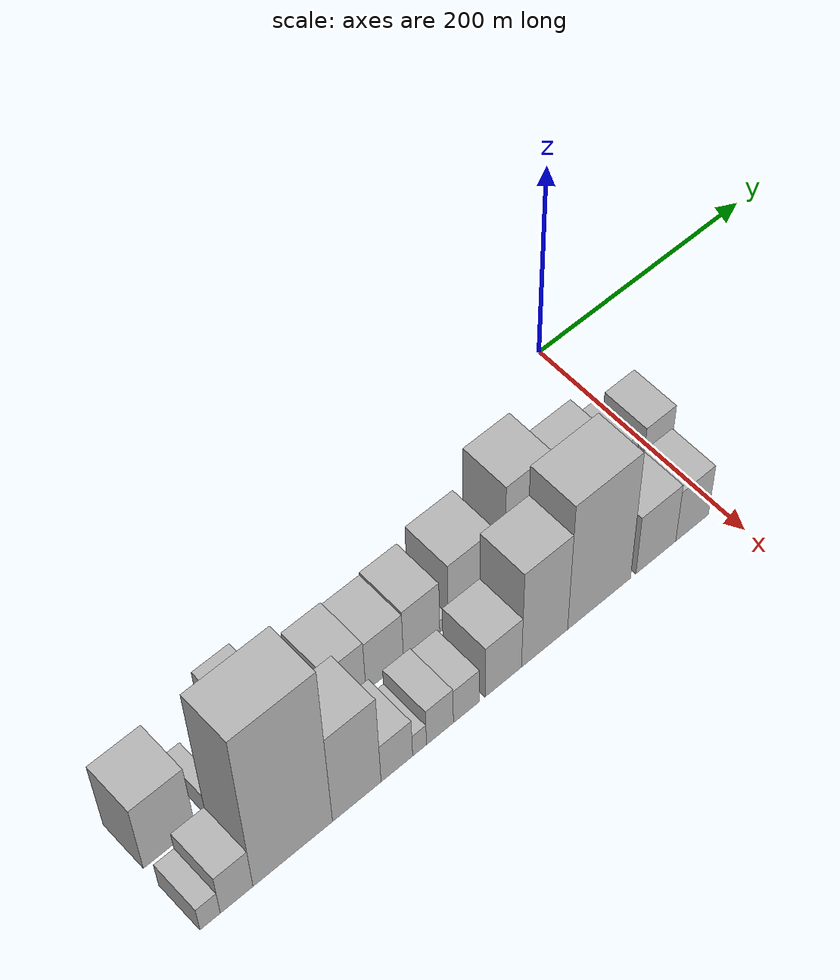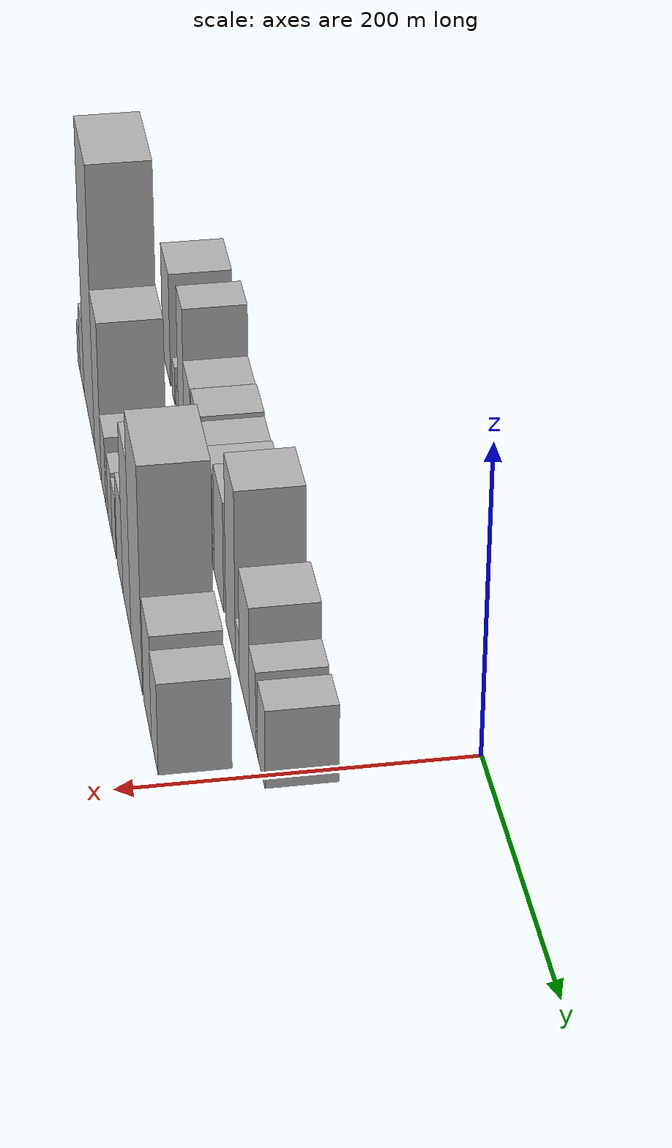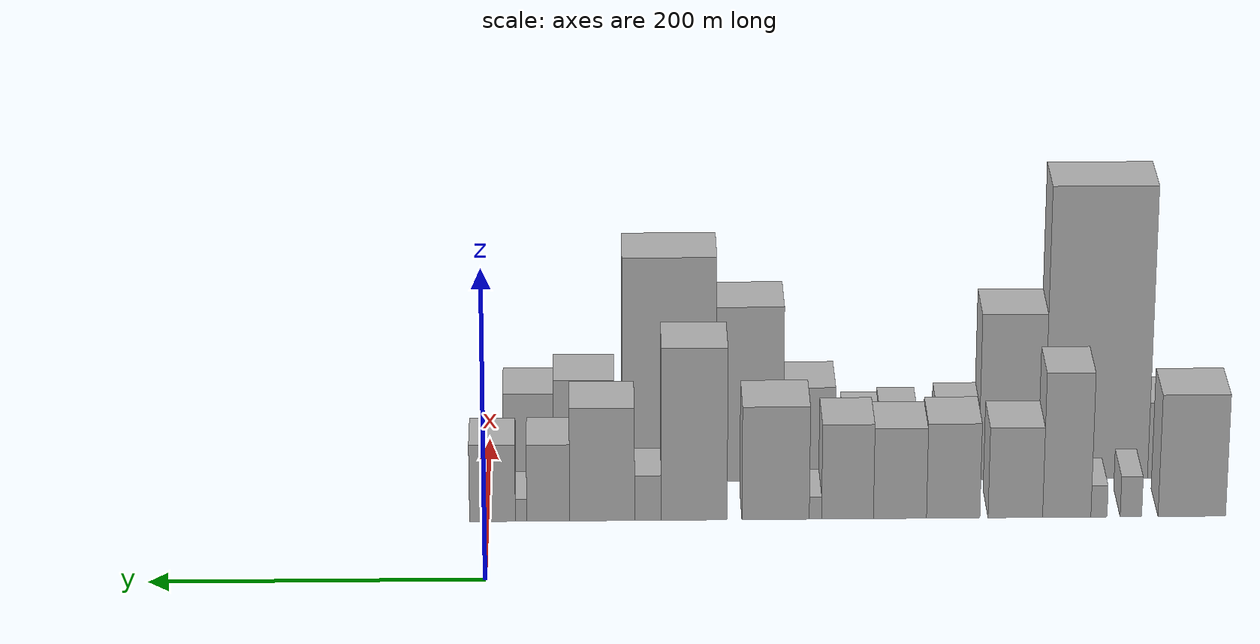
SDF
<sdf version="1.6">
 <world name="default">
  <model name="building_1">
   <static>1</static>
   <pose>100.0000 -429.3732 0 0.000000 0.000000 0.000000</pose>
   <link name="link">
    <pose>0 0 40.50 0 0 0</pose>
    <collision name="collision"><geometry><box><size>40.0000 41.2535 81.0000</size></box></geometry></collision>
    <visual name="visual">
     <cast_shadows>0</cast_shadows>
     <geometry><box><size>40.0000 41.2535 81.0000</size></box></geometry>
     <material>
      <script>
       <uri>model://HANNAS_wall/materials/scripts</uri>
       <uri>model://HANNAS_wall/materials/textures</uri>
       <name>vrc/HANNAS_wall</name>
      </script>
     </material>
    </visual>
   </link>
  </model>
  <model name="building_2">
   <static>1</static>
   <pose>100.0000 -392.1876 0 0.000000 0.000000 0.000000</pose>
   <link name="link">
    <pose>0 0 13.50 0 0 0</pose>
    <collision name="collision"><geometry><box><size>40.0000 13.1177 27.0000</size></box></geometry></collision>
    <visual name="visual">
     <cast_shadows>0</cast_shadows>
     <geometry><box><size>40.0000 13.1177 27.0000</size></box></geometry>
     <material>
      <script>
       <uri>model://HANNAS_wall/materials/scripts</uri>
       <uri>model://HANNAS_wall/materials/textures</uri>
       <name>vrc/HANNAS_wall</name>
      </script>
     </material>
    </visual>
   </link>
  </model>
  <model name="building_3">
   <static>1</static>
   <pose>100.0000 -372.6720 0 0.000000 0.000000 0.000000</pose>
   <link name="link">
    <pose>0 0 10.50 0 0 0</pose>
    <collision name="collision"><geometry><box><size>40.0000 9.9136 21.0000</size></box></geometry></collision>
    <visual name="visual">
     <cast_shadows>0</cast_shadows>
     <geometry><box><size>40.0000 9.9136 21.0000</size></box></geometry>
     <material>
      <script>
       <uri>model://HANNAS_wall/materials/scripts</uri>
       <uri>model://HANNAS_wall/materials/textures</uri>
       <name>vrc/HANNAS_wall</name>
      </script>
     </material>
    </visual>
   </link>
  </model>
  <model name="building_4">
   <static>1</static>
   <pose>100.0000 -352.9878 0 0.000000 0.000000 0.000000</pose>
   <link name="link">
    <pose>0 0 48.00 0 0 0</pose>
    <collision name="collision"><geometry><box><size>40.0000 29.4547 96.0000</size></box></geometry></collision>
    <visual name="visual">
     <cast_shadows>0</cast_shadows>
     <geometry><box><size>40.0000 29.4547 96.0000</size></box></geometry>
     <material>
      <script>
       <uri>model://HANNAS_wall/materials/scripts</uri>
       <uri>model://HANNAS_wall/materials/textures</uri>
       <name>vrc/HANNAS_wall</name>
      </script>
     </material>
    </visual>
   </link>
  </model>
  <model name="building_5">
   <static>1</static>
   <pose>100.0000 -321.6236 0 0.000000 0.000000 0.000000</pose>
   <link name="link">
    <pose>0 0 30.00 0 0 0</pose>
    <collision name="collision"><geometry><box><size>40.0000 33.2737 60.0000</size></box></geometry></collision>
    <visual name="visual">
     <cast_shadows>0</cast_shadows>
     <geometry><box><size>40.0000 33.2737 60.0000</size></box></geometry>
     <material>
      <script>
       <uri>model://HANNAS_wall/materials/scripts</uri>
       <uri>model://HANNAS_wall/materials/textures</uri>
       <name>vrc/HANNAS_wall</name>
      </script>
     </material>
    </visual>
   </link>
  </model>
  <model name="building_6">
   <static>1</static>
   <pose>100.0000 -283.7098 0 0.000000 0.000000 0.000000</pose>
   <link name="link">
    <pose>0 0 31.50 0 0 0</pose>
    <collision name="collision"><geometry><box><size>40.0000 32.5539 63.0000</size></box></geometry></collision>
    <visual name="visual">
     <cast_shadows>0</cast_shadows>
     <geometry><box><size>40.0000 32.5539 63.0000</size></box></geometry>
     <material>
      <script>
       <uri>model://HANNAS_wall/materials/scripts</uri>
       <uri>model://HANNAS_wall/materials/textures</uri>
       <name>vrc/HANNAS_wall</name>
      </script>
     </material>
    </visual>
   </link>
  </model>
  <model name="building_7">
   <static>1</static>
   <pose>100.0000 -251.2502 0 0.000000 0.000000 0.000000</pose>
   <link name="link">
    <pose>0 0 30.00 0 0 0</pose>
    <collision name="collision"><geometry><box><size>40.0000 32.3653 60.0000</size></box></geometry></collision>
    <visual name="visual">
     <cast_shadows>0</cast_shadows>
     <geometry><box><size>40.0000 32.3653 60.0000</size></box></geometry>
     <material>
      <script>
       <uri>model://HANNAS_wall/materials/scripts</uri>
       <uri>model://HANNAS_wall/materials/textures</uri>
       <name>vrc/HANNAS_wall</name>
      </script>
     </material>
    </visual>
   </link>
  </model>
  <model name="building_8">
   <static>1</static>
   <pose>100.0000 -219.2481 0 0.000000 0.000000 0.000000</pose>
   <link name="link">
    <pose>0 0 31.50 0 0 0</pose>
    <collision name="collision"><geometry><box><size>40.0000 31.6390 63.0000</size></box></geometry></collision>
    <visual name="visual">
     <cast_shadows>0</cast_shadows>
     <geometry><box><size>40.0000 31.6390 63.0000</size></box></geometry>
     <material>
      <script>
       <uri>model://HANNAS_wall/materials/scripts</uri>
       <uri>model://HANNAS_wall/materials/textures</uri>
       <name>vrc/HANNAS_wall</name>
      </script>
     </material>
    </visual>
   </link>
  </model>
  <model name="building_9">
   <static>1</static>
   <pose>100.0000 -199.6931 0 0.000000 0.000000 0.000000</pose>
   <link name="link">
    <pose>0 0 7.50 0 0 0</pose>
    <collision name="collision"><geometry><box><size>40.0000 7.4711 15.0000</size></box></geometry></collision>
    <visual name="visual">
     <cast_shadows>0</cast_shadows>
     <geometry><box><size>40.0000 7.4711 15.0000</size></box></geometry>
     <material>
      <script>
       <uri>model://HANNAS_wall/materials/scripts</uri>
       <uri>model://HANNAS_wall/materials/textures</uri>
       <name>vrc/HANNAS_wall</name>
      </script>
     </material>
    </visual>
   </link>
  </model>
  <model name="building_10">
   <static>1</static>
   <pose>100.0000 -175.4434 0 0.000000 0.000000 0.000000</pose>
   <link name="link">
    <pose>0 0 37.50 0 0 0</pose>
    <collision name="collision"><geometry><box><size>40.0000 41.0281 75.0000</size></box></geometry></collision>
    <visual name="visual">
     <cast_shadows>0</cast_shadows>
     <geometry><box><size>40.0000 41.0281 75.0000</size></box></geometry>
     <material>
      <script>
       <uri>model://HANNAS_wall/materials/scripts</uri>
       <uri>model://HANNAS_wall/materials/textures</uri>
       <name>vrc/HANNAS_wall</name>
      </script>
     </material>
    </visual>
   </link>
  </model>
  <model name="building_11">
   <static>1</static>
   <pose>100.0000 -125.9184 0 0.000000 0.000000 0.000000</pose>
   <link name="link">
    <pose>0 0 57.00 0 0 0</pose>
    <collision name="collision"><geometry><box><size>40.0000 40.0219 114.0000</size></box></geometry></collision>
    <visual name="visual">
     <cast_shadows>0</cast_shadows>
     <geometry><box><size>40.0000 40.0219 114.0000</size></box></geometry>
     <material>
      <script>
       <uri>model://HANNAS_wall/materials/scripts</uri>
       <uri>model://HANNAS_wall/materials/textures</uri>
       <name>vrc/HANNAS_wall</name>
      </script>
     </material>
    </visual>
   </link>
  </model>
  <model name="building_12">
   <static>1</static>
   <pose>100.0000 -97.7523 0 0.000000 0.000000 0.000000</pose>
   <link name="link">
    <pose>0 0 15.00 0 0 0</pose>
    <collision name="collision"><geometry><box><size>40.0000 16.3104 30.0000</size></box></geometry></collision>
    <visual name="visual">
     <cast_shadows>0</cast_shadows>
     <geometry><box><size>40.0000 16.3104 30.0000</size></box></geometry>
     <material>
      <script>
       <uri>model://HANNAS_wall/materials/scripts</uri>
       <uri>model://HANNAS_wall/materials/textures</uri>
       <name>vrc/HANNAS_wall</name>
      </script>
     </material>
    </visual>
   </link>
  </model>
  <model name="building_13">
   <static>1</static>
   <pose>100.0000 -69.8702 0 0.000000 0.000000 0.000000</pose>
   <link name="link">
    <pose>0 0 37.50 0 0 0</pose>
    <collision name="collision"><geometry><box><size>40.0000 39.4537 75.0000</size></box></geometry></collision>
    <visual name="visual">
     <cast_shadows>0</cast_shadows>
     <geometry><box><size>40.0000 39.4537 75.0000</size></box></geometry>
     <material>
      <script>
       <uri>model://HANNAS_wall/materials/scripts</uri>
       <uri>model://HANNAS_wall/materials/textures</uri>
       <name>vrc/HANNAS_wall</name>
      </script>
     </material>
    </visual>
   </link>
  </model>
  <model name="building_14">
   <static>1</static>
   <pose>100.0000 -37.0855 0 0.000000 0.000000 0.000000</pose>
   <link name="link">
    <pose>0 0 25.50 0 0 0</pose>
    <collision name="collision"><geometry><box><size>40.0000 26.1157 51.0000</size></box></geometry></collision>
    <visual name="visual">
     <cast_shadows>0</cast_shadows>
     <geometry><box><size>40.0000 26.1157 51.0000</size></box></geometry>
     <material>
      <script>
       <uri>model://HANNAS_wall/materials/scripts</uri>
       <uri>model://HANNAS_wall/materials/textures</uri>
       <name>vrc/HANNAS_wall</name>
      </script>
     </material>
    </visual>
   </link>
  </model>
  <model name="building_15">
   <static>1</static>
   <pose>100.0000 -20.5512 0 0.000000 0.000000 0.000000</pose>
   <link name="link">
    <pose>0 0 7.50 0 0 0</pose>
    <collision name="collision"><geometry><box><size>40.0000 6.9529 15.0000</size></box></geometry></collision>
    <visual name="visual">
     <cast_shadows>0</cast_shadows>
     <geometry><box><size>40.0000 6.9529 15.0000</size></box></geometry>
     <material>
      <script>
       <uri>model://HANNAS_wall/materials/scripts</uri>
       <uri>model://HANNAS_wall/materials/textures</uri>
       <name>vrc/HANNAS_wall</name>
      </script>
     </material>
    </visual>
   </link>
  </model>
  <model name="building_16">
   <static>1</static>
   <pose>100.0000 -3.1467 0 0.000000 0.000000 0.000000</pose>
   <link name="link">
    <pose>0 0 25.50 0 0 0</pose>
    <collision name="collision"><geometry><box><size>40.0000 27.8561 51.0000</size></box></geometry></collision>
    <visual name="visual">
     <cast_shadows>0</cast_shadows>
     <geometry><box><size>40.0000 27.8561 51.0000</size></box></geometry>
     <material>
      <script>
       <uri>model://HANNAS_wall/materials/scripts</uri>
       <uri>model://HANNAS_wall/materials/textures</uri>
       <name>vrc/HANNAS_wall</name>
      </script>
     </material>
    </visual>
   </link>
  </model>
  <model name="building_30">
   <static>1</static>
   <pose>155.0000 -441.9894 0 0.000000 0.000000 0.000000</pose>
   <link name="link">
    <pose>0 0 15.00 0 0 0</pose>
    <collision name="collision"><geometry><box><size>40.0000 16.0211 30.0000</size></box></geometry></collision>
    <visual name="visual">
     <cast_shadows>0</cast_shadows>
     <geometry><box><size>40.0000 16.0211 30.0000</size></box></geometry>
     <material>
      <script>
       <uri>model://HANNAS_wall/materials/scripts</uri>
       <uri>model://HANNAS_wall/materials/textures</uri>
       <name>vrc/HANNAS_wall</name>
      </script>
     </material>
    </visual>
   </link>
  </model>
  <model name="building_31">
   <static>1</static>
   <pose>155.0000 -421.0006 0 0.000000 0.000000 0.000000</pose>
   <link name="link">
    <pose>0 0 25.50 0 0 0</pose>
    <collision name="collision"><geometry><box><size>40.0000 25.9566 51.0000</size></box></geometry></collision>
    <visual name="visual">
     <cast_shadows>0</cast_shadows>
     <geometry><box><size>40.0000 25.9566 51.0000</size></box></geometry>
     <material>
      <script>
       <uri>model://HANNAS_wall/materials/scripts</uri>
       <uri>model://HANNAS_wall/materials/textures</uri>
       <name>vrc/HANNAS_wall</name>
      </script>
     </material>
    </visual>
   </link>
  </model>
  <model name="building_32">
   <static>1</static>
   <pose>155.0000 -375.7685 0 0.000000 0.000000 0.000000</pose>
   <link name="link">
    <pose>0 0 97.50 0 0 0</pose>
    <collision name="collision"><geometry><box><size>40.0000 64.5076 195.0000</size></box></geometry></collision>
    <visual name="visual">
     <cast_shadows>0</cast_shadows>
     <geometry><box><size>40.0000 64.5076 195.0000</size></box></geometry>
     <material>
      <script>
       <uri>model://HANNAS_wall/materials/scripts</uri>
       <uri>model://HANNAS_wall/materials/textures</uri>
       <name>vrc/HANNAS_wall</name>
      </script>
     </material>
    </visual>
   </link>
  </model>
  <model name="building_33">
   <static>1</static>
   <pose>155.0000 -323.3387 0 0.000000 0.000000 0.000000</pose>
   <link name="link">
    <pose>0 0 55.50 0 0 0</pose>
    <collision name="collision"><geometry><box><size>40.0000 40.3519 111.0000</size></box></geometry></collision>
    <visual name="visual">
     <cast_shadows>0</cast_shadows>
     <geometry><box><size>40.0000 40.3519 111.0000</size></box></geometry>
     <material>
      <script>
       <uri>model://HANNAS_wall/materials/scripts</uri>
       <uri>model://HANNAS_wall/materials/textures</uri>
       <name>vrc/HANNAS_wall</name>
      </script>
     </material>
    </visual>
   </link>
  </model>
  <model name="building_34">
   <static>1</static>
   <pose>155.0000 -289.8574 0 0.000000 0.000000 0.000000</pose>
   <link name="link">
    <pose>0 0 24.00 0 0 0</pose>
    <collision name="collision"><geometry><box><size>40.0000 26.6108 48.0000</size></box></geometry></collision>
    <visual name="visual">
     <cast_shadows>0</cast_shadows>
     <geometry><box><size>40.0000 26.6108 48.0000</size></box></geometry>
     <material>
      <script>
       <uri>model://HANNAS_wall/materials/scripts</uri>
       <uri>model://HANNAS_wall/materials/textures</uri>
       <name>vrc/HANNAS_wall</name>
      </script>
     </material>
    </visual>
   </link>
  </model>
  <model name="building_35">
   <static>1</static>
   <pose>155.0000 -270.6579 0 0.000000 0.000000 0.000000</pose>
   <link name="link">
    <pose>0 0 13.50 0 0 0</pose>
    <collision name="collision"><geometry><box><size>40.0000 11.7881 27.0000</size></box></geometry></collision>
    <visual name="visual">
     <cast_shadows>0</cast_shadows>
     <geometry><box><size>40.0000 11.7881 27.0000</size></box></geometry>
     <material>
      <script>
       <uri>model://HANNAS_wall/materials/scripts</uri>
       <uri>model://HANNAS_wall/materials/textures</uri>
       <name>vrc/HANNAS_wall</name>
      </script>
     </material>
    </visual>
   </link>
  </model>
  <model name="building_36">
   <static>1</static>
   <pose>155.0000 -253.2008 0 0.000000 0.000000 0.000000</pose>
   <link name="link">
    <pose>0 0 22.50 0 0 0</pose>
    <collision name="collision"><geometry><box><size>40.0000 23.1262 45.0000</size></box></geometry></collision>
    <visual name="visual">
     <cast_shadows>0</cast_shadows>
     <geometry><box><size>40.0000 23.1262 45.0000</size></box></geometry>
     <material>
      <script>
       <uri>model://HANNAS_wall/materials/scripts</uri>
       <uri>model://HANNAS_wall/materials/textures</uri>
       <name>vrc/HANNAS_wall</name>
      </script>
     </material>
    </visual>
   </link>
  </model>
  <model name="building_37">
   <static>1</static>
   <pose>155.0000 -230.3536 0 0.000000 0.000000 0.000000</pose>
   <link name="link">
    <pose>0 0 21.00 0 0 0</pose>
    <collision name="collision"><geometry><box><size>40.0000 22.5682 42.0000</size></box></geometry></collision>
    <visual name="visual">
     <cast_shadows>0</cast_shadows>
     <geometry><box><size>40.0000 22.5682 42.0000</size></box></geometry>
     <material>
      <script>
       <uri>model://HANNAS_wall/materials/scripts</uri>
       <uri>model://HANNAS_wall/materials/textures</uri>
       <name>vrc/HANNAS_wall</name>
      </script>
     </material>
    </visual>
   </link>
  </model>
  <model name="building_38">
   <static>1</static>
   <pose>155.0000 -198.0576 0 0.000000 0.000000 0.000000</pose>
   <link name="link">
    <pose>0 0 31.50 0 0 0</pose>
    <collision name="collision"><geometry><box><size>40.0000 32.0238 63.0000</size></box></geometry></collision>
    <visual name="visual">
     <cast_shadows>0</cast_shadows>
     <geometry><box><size>40.0000 32.0238 63.0000</size></box></geometry>
     <material>
      <script>
       <uri>model://HANNAS_wall/materials/scripts</uri>
       <uri>model://HANNAS_wall/materials/textures</uri>
       <name>vrc/HANNAS_wall</name>
      </script>
     </material>
    </visual>
   </link>
  </model>
  <model name="building_39">
   <static>1</static>
   <pose>155.0000 -161.3333 0 0.000000 0.000000 0.000000</pose>
   <link name="link">
    <pose>0 0 58.50 0 0 0</pose>
    <collision name="collision"><geometry><box><size>40.0000 41.4246 117.0000</size></box></geometry></collision>
    <visual name="visual">
     <cast_shadows>0</cast_shadows>
     <geometry><box><size>40.0000 41.4246 117.0000</size></box></geometry>
     <material>
      <script>
       <uri>model://HANNAS_wall/materials/scripts</uri>
       <uri>model://HANNAS_wall/materials/textures</uri>
       <name>vrc/HANNAS_wall</name>
      </script>
     </material>
    </visual>
   </link>
  </model>
  <model name="building_40">
   <static>1</static>
   <pose>155.0000 -111.7166 0 0.000000 0.000000 0.000000</pose>
   <link name="link">
    <pose>0 0 75.00 0 0 0</pose>
    <collision name="collision"><geometry><box><size>40.0000 57.8089 150.0000</size></box></geometry></collision>
    <visual name="visual">
     <cast_shadows>0</cast_shadows>
     <geometry><box><size>40.0000 57.8089 150.0000</size></box></geometry>
     <material>
      <script>
       <uri>model://HANNAS_wall/materials/scripts</uri>
       <uri>model://HANNAS_wall/materials/textures</uri>
       <name>vrc/HANNAS_wall</name>
      </script>
     </material>
    </visual>
   </link>
  </model>
  <model name="building_41">
   <static>1</static>
   <pose>155.0000 -59.1026 0 0.000000 0.000000 0.000000</pose>
   <link name="link">
    <pose>0 0 34.50 0 0 0</pose>
    <collision name="collision"><geometry><box><size>40.0000 37.4190 69.0000</size></box></geometry></collision>
    <visual name="visual">
     <cast_shadows>0</cast_shadows>
     <geometry><box><size>40.0000 37.4190 69.0000</size></box></geometry>
     <material>
      <script>
       <uri>model://HANNAS_wall/materials/scripts</uri>
       <uri>model://HANNAS_wall/materials/textures</uri>
       <name>vrc/HANNAS_wall</name>
      </script>
     </material>
    </visual>
   </link>
  </model>
  <model name="building_42">
   <static>1</static>
   <pose>155.0000 -24.8432 0 0.000000 0.000000 0.000000</pose>
   <link name="link">
    <pose>0 0 30.00 0 0 0</pose>
    <collision name="collision"><geometry><box><size>40.0000 31.0998 60.0000</size></box></geometry></collision>
    <visual name="visual">
     <cast_shadows>0</cast_shadows>
     <geometry><box><size>40.0000 31.0998 60.0000</size></box></geometry>
     <material>
      <script>
       <uri>model://HANNAS_wall/materials/scripts</uri>
       <uri>model://HANNAS_wall/materials/textures</uri>
       <name>vrc/HANNAS_wall</name>
      </script>
     </material>
    </visual>
   </link>
  </model>
 </world>
</sdf>
